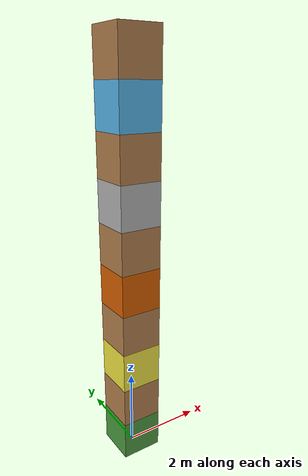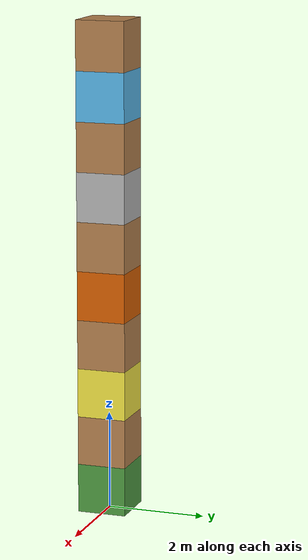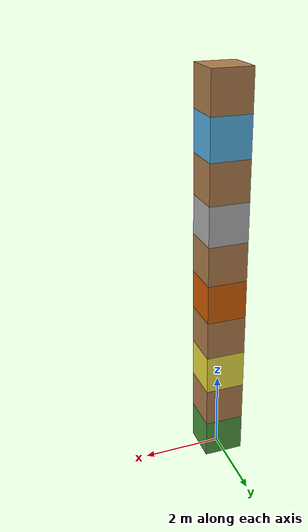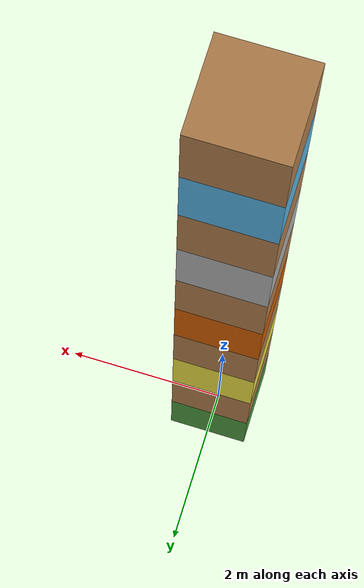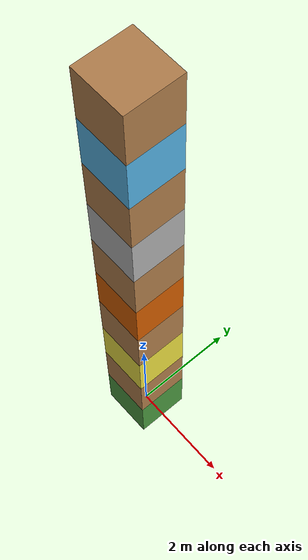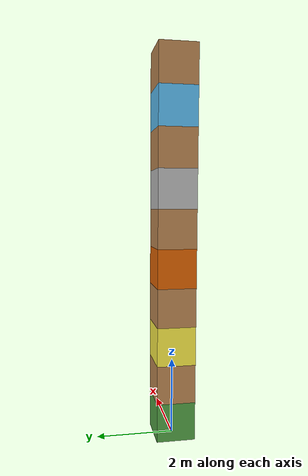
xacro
<?xml version="1.0"?>
<robot name="continuous_pendulum"
       xmlns:xi="http://www.w3.org/2001/XInclude"
       xmlns:gazebo="http://playerstage.sourceforge.net/gazebo/xmlschema/#gz"
       xmlns:model="http://playerstage.sourceforge.net/gazebo/xmlschema/#model"
       xmlns:sensor="http://playerstage.sourceforge.net/gazebo/xmlschema/#sensor"
       xmlns:body="http://playerstage.sourceforge.net/gazebo/xmlschema/#body"
       xmlns:geom="http://playerstage.sourceforge.net/gazebo/xmlschema/#geom"
       xmlns:joint="http://playerstage.sourceforge.net/gazebo/xmlschema/#joint"
       xmlns:interface="http://playerstage.sourceforge.net/gazebo/xmlschema/#interface"
       xmlns:rendering="http://playerstage.sourceforge.net/gazebo/xmlschema/#rendering"
       xmlns:renderable="http://playerstage.sourceforge.net/gazebo/xmlschema/#renderable"
       xmlns:controller="http://playerstage.sourceforge.net/gazebo/xmlschema/#controller"
       xmlns:xacro="http://ros.org/wiki/xacro"
       xmlns:physics="http://playerstage.sourceforge.net/gazebo/xmlschema/#physics">

  <xacro:property name="moi" value="0.0001"/>
  <xacro:property name="mass" value="1.0"/>
  <xacro:property name="kp" value="100000000000.0"/> <!-- erp of ~1e-2 -->
  <xacro:property name="kd" value="1000000000.0"/> <!-- cfm of ~1e-10 -->

  <link name="world"/>
  <xacro:macro name="one_link" params="link_name parent *origin material">
    <joint name="${link_name}_joint" type="floating" >
      <insert_block name="origin"/>
      <parent link="${parent}" />
      <child link="${link_name}" />
      <dynamics damping="0.0" />
    </joint>
    <link name="${link_name}">
      <inertial >
        <mass value="${mass}" />
        <origin xyz="0 0 0" />
        <inertia  ixx="${moi}" ixy="0.0"  ixz="0.0"  iyy="${moi}"  iyz="0.0"  izz="${moi}" />
      </inertial>
      <visual >
        <origin xyz="0 0 0.5" rpy="0 0 0" />
        <geometry>
          <box size="1 1 1" />
        </geometry>
      </visual>
      <collision >
        <origin xyz="0 0 0.5" rpy="0 0 0" />
        <geometry>
          <box size="1 1 1" />
        </geometry>
      </collision>
    </link>
    <gazebo reference="${link_name}">
      <kp>${kp}</kp>
      <kd>${kd}</kd>
      <material>${material}</material>
      <turnGravityOff>false</turnGravityOff>
      <selfCollide>true</selfCollide>
    </gazebo>
  </xacro:macro>

  <xacro:one_link link_name="link1" parent="world" material="Gazebo/GrassFloor">
    <origin xyz="0 0 0" rpy="0 0 0"/>
  </xacro:one_link>
  <xacro:one_link link_name="link2" parent="world" material="Gazebo/LightWood">
    <origin xyz="0 0 1" rpy="0 0 0"/>
  </xacro:one_link>
  <xacro:one_link link_name="link3" parent="world" material="Gazebo/BumpyMetal">
    <origin xyz="0 0 2" rpy="0 0 0"/>
  </xacro:one_link>
  <xacro:one_link link_name="link4" parent="world" material="Gazebo/LightWood">
    <origin xyz="0 0 3" rpy="0 0 0"/>
  </xacro:one_link>
  <xacro:one_link link_name="link5" parent="world" material="Gazebo/BumpyMetal">
    <origin xyz="0 0 4" rpy="0 0 0"/>
  </xacro:one_link>
  <xacro:one_link link_name="link6" parent="world" material="Gazebo/LightWood">
    <origin xyz="0 0 5" rpy="0 0 0"/>
  </xacro:one_link>
  <xacro:one_link link_name="link7" parent="world" material="Gazebo/BumpyMetal">
    <origin xyz="0 0 6" rpy="0 0 0"/>
  </xacro:one_link>
  <xacro:one_link link_name="link8" parent="world" material="Gazebo/LightWood">
    <origin xyz="0 0 7" rpy="0 0 0"/>
  </xacro:one_link>
  <xacro:one_link link_name="link9" parent="world" material="Gazebo/BumpyMetal">
    <origin xyz="0 0 8" rpy="0 0 0"/>
  </xacro:one_link>
  <xacro:one_link link_name="link10" parent="world" material="Gazebo/LightWood">
    <origin xyz="0 0 9" rpy="0 0 0"/>
  </xacro:one_link>

</robot>
